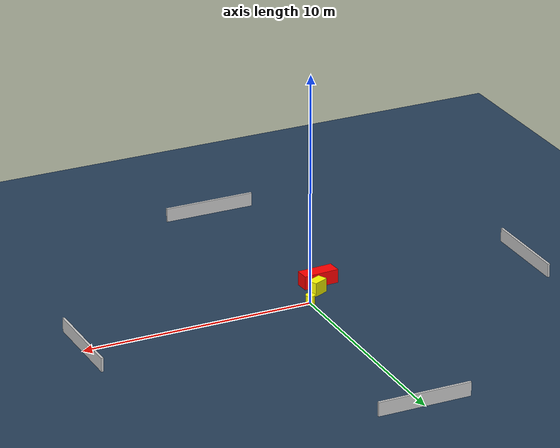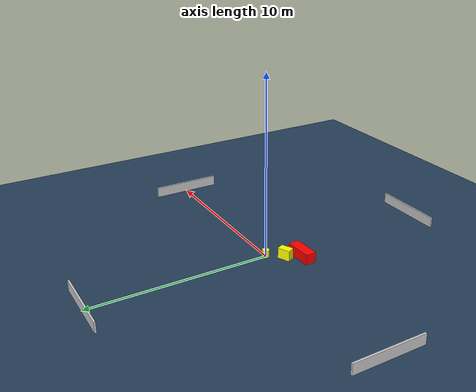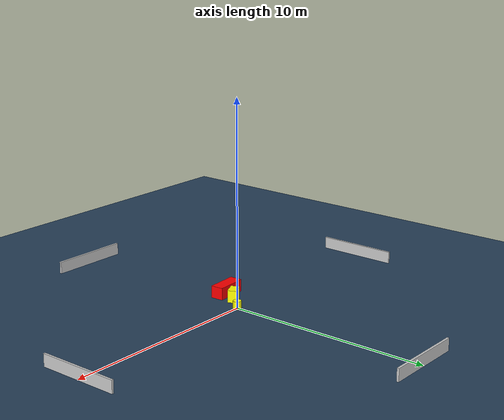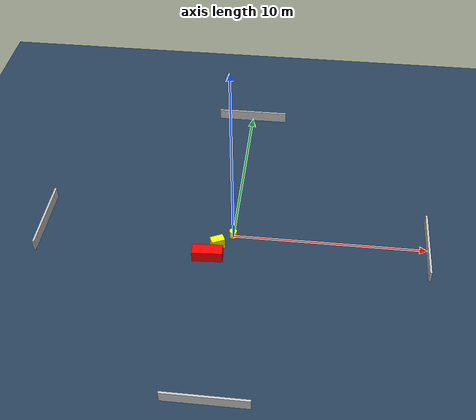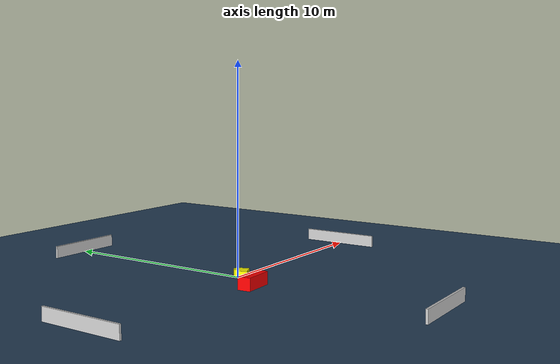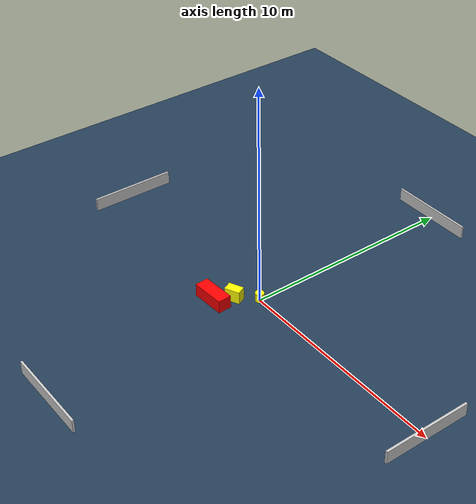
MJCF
<?xml version="1.0" ?>
<mujoco model="generated_environment">
  <option timestep="0.01" integrator="RK4" cone="elliptic"/>
  <default>
    <geom density="1"/>
  </default>
  <asset>
    <texture builtin="gradient" height="3072" name="skybox" rgb1="0.3 0.5 0.7" rgb2="0 0 0" type="skybox" width="512"/>
    <texture builtin="checker" height="300" name="groundplane" rgb1="0.2 0.3 0.4" rgb2="0.1 0.2 0.3" type="2d" width="300"/>
    <material name="groundplane" reflectance="0.2" texrepeat="5 5" texture="groundplane"/>
  </asset>
  <worldbody>
    <light dir="0 0 -1" directional="true" pos="0 0 1.5"/>
    <geom condim="3" friction="0.5 0.005 0.001" material="groundplane" name="floor" pos="0 0 0" size="0 0 0.05" type="plane"/>
    <body name="walls">
      <geom name="wall_1" condim="4" pos="-10.0 0.0 0.3" rgba="0.800000011920929 0.800000011920929 0.800000011920929 1.0" size="0.05 2.0 0.3" type="box"/>
      <geom name="wall_2" condim="4" pos="10.0 0.0 0.3" rgba="0.800000011920929 0.800000011920929 0.800000011920929 1.0" size="0.05 2.0 0.3" type="box"/>
      <geom name="wall_3" condim="4" pos="0.0 -10.0 0.3" rgba="0.800000011920929 0.800000011920929 0.800000011920929 1.0" size="2.0 0.05 0.3" type="box"/>
      <geom name="wall_4" condim="4" pos="0.0 10.0 0.3" rgba="0.800000011920929 0.800000011920929 0.800000011920929 1.0" size="2.0 0.05 0.3" type="box"/>
    </body>
    <body name="robot">
      <joint name="joint_x" type="slide" pos="0 0 0" axis="1 0 0"/>
      <joint name="joint_y" type="slide" pos="0 0 0" axis="0 1 0"/>
      <geom name="robot" type="cylinder" pos="0.0 0.0 0.2" size="0.2 0.2 0.0" mass="5.0" friction="1.0 0.005 0.0001" condim="4" rgba="1.0 1.0 0.0 1.0"/>
    </body>
    <body name="obstacle_1_movable">
      <geom name="obstacle_1_movable" condim="4" pos="-0.7086816286639313 -0.8033685180572707 0.3" euler="0 0 24.963048224871844" friction="0.0 0.005 0.001" rgba="1.0 1.0 0.0 1.0" size="0.346674745523892 0.21395229655672912 0.3" type="box" mass="0.1"/>
      <joint type="free"/>
    </body>
    <body name="obstacle_2_static">
      <geom name="obstacle_2_static" condim="4" pos="-1.1191401208256462 -1.5886573476035821 0.3" euler="0 0 3.3369910729811947" friction="0.0 0.005 0.001" rgba="1.0 0.0 0.0 1.0" size="0.777049384906503 0.3106652058150259 0.3" type="box"/>
    </body>
  </worldbody>
  <actuator>
    <motor name="actuator_x" joint="joint_x" gear="1" ctrlrange="-1 1"/>
    <motor name="actuator_y" joint="joint_y" gear="1" ctrlrange="-1 1"/>
  </actuator>
</mujoco>
